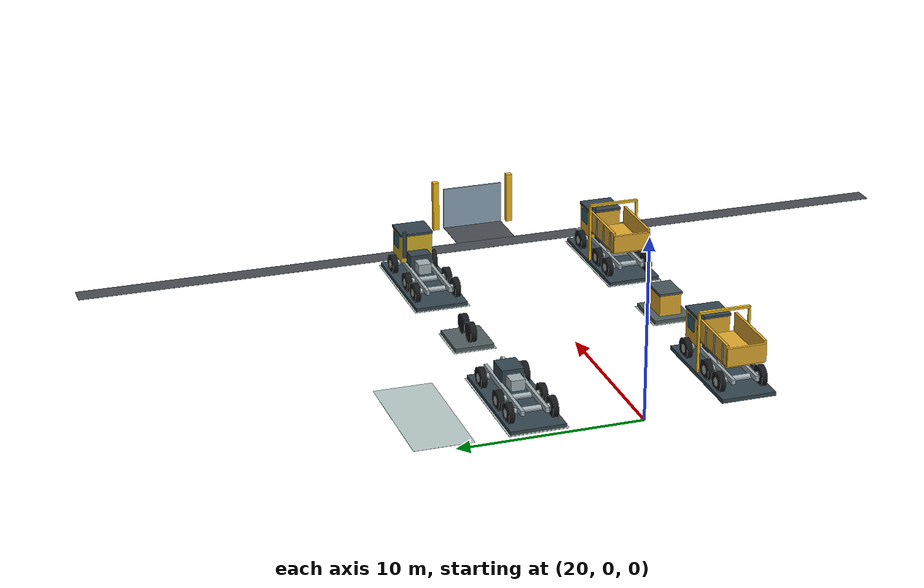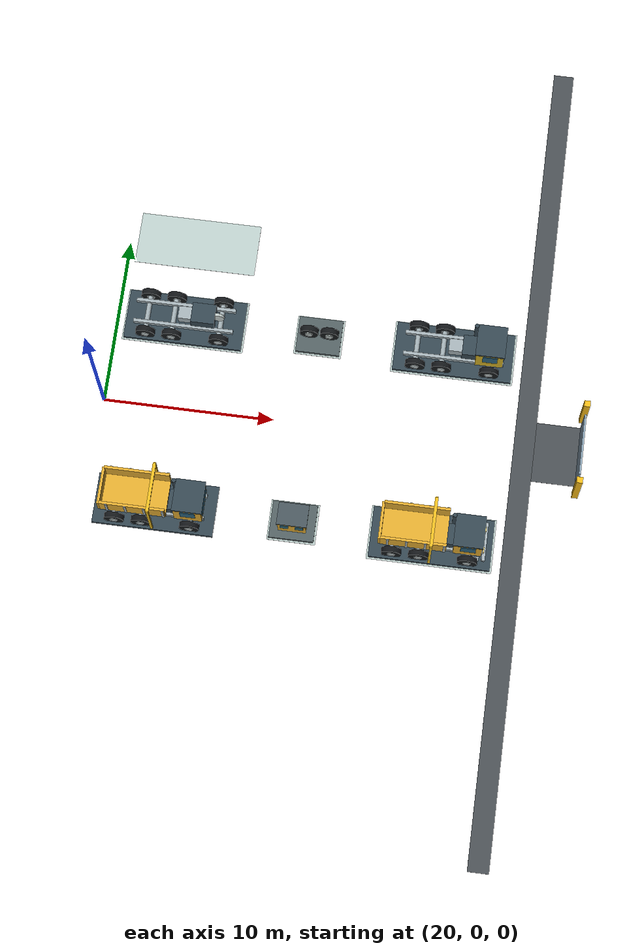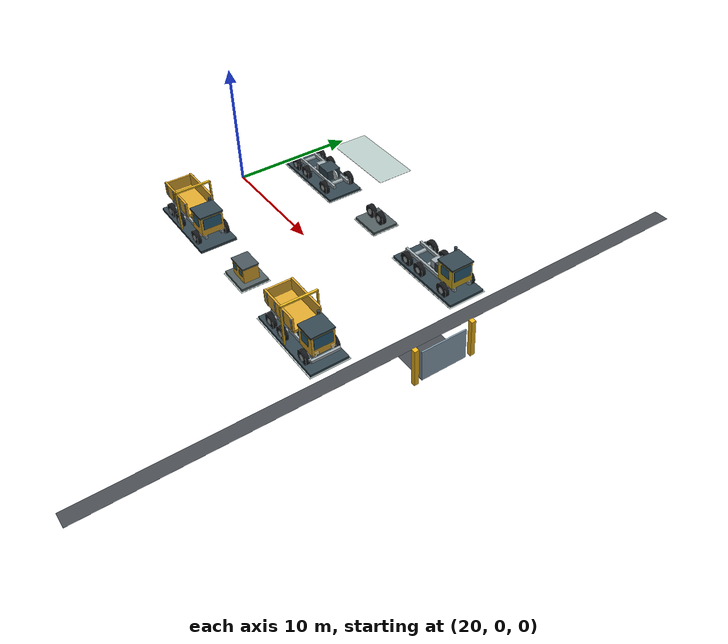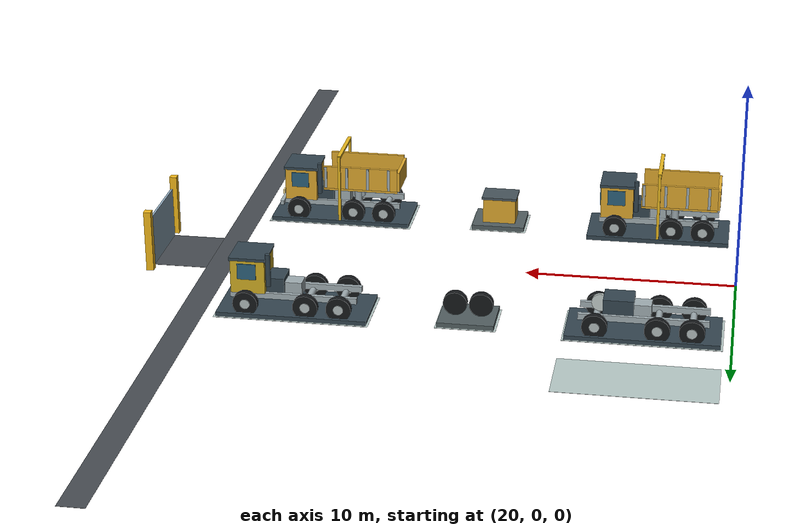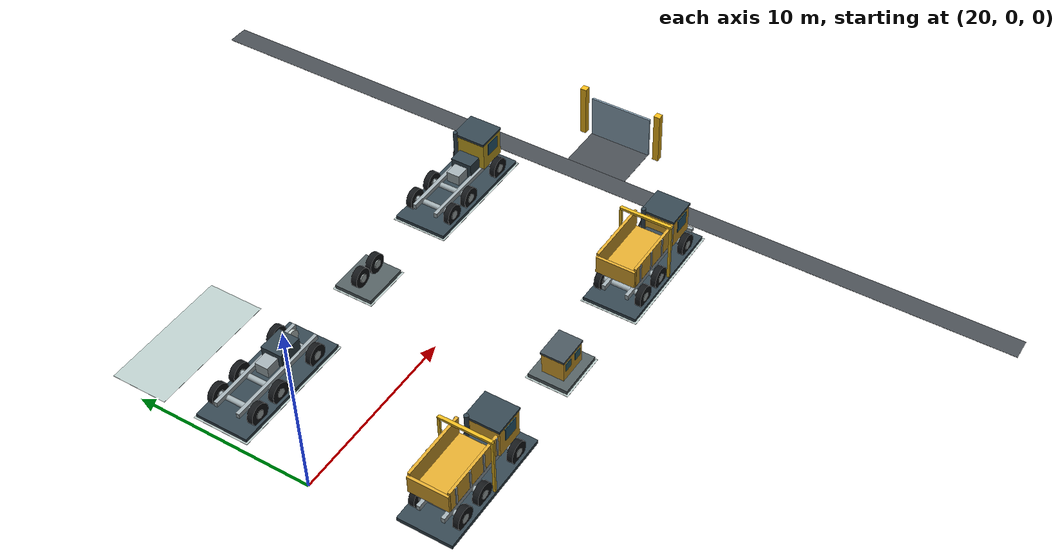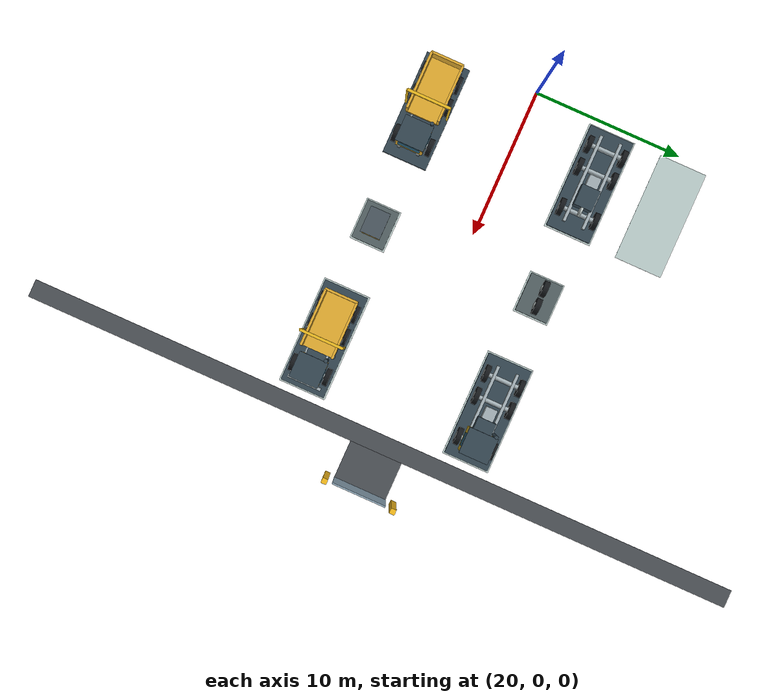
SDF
<sdf version="1.7">
 <world name="warehouse_layout_demo">
  <include><uri>model://sun</uri></include>
  <model name="east_perimeter_path">
   <static>true</static>
   <pose>44.7 0.0 0.025 0 0 0</pose>
   <link name="marking">
    <visual name="visual">
     <geometry><box><size>1.2 49.0 0.012</size></box></geometry>
     <material><ambient>0.28 0.30 0.32 1</ambient><diffuse>0.28 0.30 0.32 1</diffuse></material>
    </visual>
   </link>
  </model>
  <model name="east_gate_approach">
   <static>true</static>
   <pose>46.6 0.0 0.025 0 0 0</pose>
   <link name="marking">
    <visual name="visual">
     <geometry><box><size>2.6 3.6 0.012</size></box></geometry>
     <material><ambient>0.28 0.30 0.32 1</ambient><diffuse>0.28 0.30 0.32 1</diffuse></material>
    </visual>
   </link>
  </model>
  <model name="east_gate_south_post">
   <static>true</static>
   <pose>47.9 -2.3 1.5 0 0 0</pose>
   <link name="link">
    <collision name="collision">
     <geometry><box><size>0.35 0.35 3.0</size></box></geometry>
     <surface><friction><ode><mu>0.9</mu><mu2>0.9</mu2></ode></friction></surface>
    </collision>
    <visual name="visual">
     <geometry><box><size>0.35 0.35 3.0</size></box></geometry>
     <material><ambient>0.95 0.72 0.10 1</ambient><diffuse>0.95 0.72 0.10 1</diffuse></material>
    </visual>
   </link>
  </model>
  <model name="east_gate_north_post">
   <static>true</static>
   <pose>47.9 2.3 1.5 0 0 0</pose>
   <link name="link">
    <collision name="collision">
     <geometry><box><size>0.35 0.35 3.0</size></box></geometry>
     <surface><friction><ode><mu>0.9</mu><mu2>0.9</mu2></ode></friction></surface>
    </collision>
    <visual name="visual">
     <geometry><box><size>0.35 0.35 3.0</size></box></geometry>
     <material><ambient>0.95 0.72 0.10 1</ambient><diffuse>0.95 0.72 0.10 1</diffuse></material>
    </visual>
   </link>
  </model>
  <model name="warehouse_east_gate">
   <static>false</static>
   <pose>47.9 0.0 1.25 0 0 0</pose>
   <link name="panel">
    <kinematic>true</kinematic>
    <gravity>false</gravity>
    <inertial>
     <mass>100.0</mass>
     <inertia><ixx>100.0</ixx><iyy>100.0</iyy><izz>100.0</izz><ixy>0</ixy><ixz>0</ixz><iyz>0</iyz></inertia>
    </inertial>
    <collision name="collision"><geometry><box><size>0.105 3.6 2.5</size></box></geometry></collision>
    <visual name="visual">
     <geometry><box><size>0.105 3.6 2.5</size></box></geometry>
     <material><ambient>0.55 0.65 0.72 1</ambient><diffuse>0.55 0.65 0.72 1</diffuse></material>
    </visual>
   </link>
  </model>
  <model name="vehicle_stage_5_line_4_se">
   <static>true</static>
   <pose>24.0 -6.0 0 0 0 0</pose>
   <link name="fixture">
    <collision name="collision">
     <pose>0 0 1.9 0 0 0</pose>
     <geometry><box><size>7.0 3.0 3.8</size></box></geometry>
    </collision>
    <visual name="service_platform">
     <pose>0 0 0.11 0 0 0</pose>
     <geometry><box><size>7.0 3.0 0.22</size></box></geometry>
     <material><ambient>0.20 0.27 0.31 1</ambient><diffuse>0.20 0.27 0.31 1</diffuse></material>
    </visual>
    <visual name="chassis_rail_0">
     <pose>0 -0.66 0.85 0 0 0</pose>
     <geometry><box><size>5.9 0.19 0.28</size></box></geometry>
     <material><ambient>0.63 0.68 0.70 1</ambient><diffuse>0.63 0.68 0.70 1</diffuse></material>
    </visual>
    <visual name="haul_tire_0_0">
     <pose>-2.2 -1.18 0.63 1.57079632679 0 0</pose>
     <geometry><cylinder><radius>0.58</radius><length>0.32</length></cylinder></geometry>
     <material><ambient>0.08 0.09 0.10 1</ambient><diffuse>0.08 0.09 0.10 1</diffuse></material>
    </visual>
    <visual name="tire_hub_0_0">
     <pose>-2.2 -1.18 0.63 1.57079632679 0 0</pose>
     <geometry><cylinder><radius>0.23</radius><length>0.34</length></cylinder></geometry>
     <material><ambient>0.70 0.74 0.74 1</ambient><diffuse>0.70 0.74 0.74 1</diffuse></material>
    </visual>
    <visual name="haul_tire_0_1">
     <pose>-0.65 -1.18 0.63 1.57079632679 0 0</pose>
     <geometry><cylinder><radius>0.58</radius><length>0.32</length></cylinder></geometry>
     <material><ambient>0.08 0.09 0.10 1</ambient><diffuse>0.08 0.09 0.10 1</diffuse></material>
    </visual>
    <visual name="tire_hub_0_1">
     <pose>-0.65 -1.18 0.63 1.57079632679 0 0</pose>
     <geometry><cylinder><radius>0.23</radius><length>0.34</length></cylinder></geometry>
     <material><ambient>0.70 0.74 0.74 1</ambient><diffuse>0.70 0.74 0.74 1</diffuse></material>
    </visual>
    <visual name="haul_tire_0_2">
     <pose>2.15 -1.18 0.63 1.57079632679 0 0</pose>
     <geometry><cylinder><radius>0.58</radius><length>0.32</length></cylinder></geometry>
     <material><ambient>0.08 0.09 0.10 1</ambient><diffuse>0.08 0.09 0.10 1</diffuse></material>
    </visual>
    <visual name="tire_hub_0_2">
     <pose>2.15 -1.18 0.63 1.57079632679 0 0</pose>
     <geometry><cylinder><radius>0.23</radius><length>0.34</length></cylinder></geometry>
     <material><ambient>0.70 0.74 0.74 1</ambient><diffuse>0.70 0.74 0.74 1</diffuse></material>
    </visual>
    <visual name="chassis_rail_1">
     <pose>0 0.66 0.85 0 0 0</pose>
     <geometry><box><size>5.9 0.19 0.28</size></box></geometry>
     <material><ambient>0.63 0.68 0.70 1</ambient><diffuse>0.63 0.68 0.70 1</diffuse></material>
    </visual>
    <visual name="haul_tire_1_0">
     <pose>-2.2 1.18 0.63 1.57079632679 0 0</pose>
     <geometry><cylinder><radius>0.58</radius><length>0.32</length></cylinder></geometry>
     <material><ambient>0.08 0.09 0.10 1</ambient><diffuse>0.08 0.09 0.10 1</diffuse></material>
    </visual>
    <visual name="tire_hub_1_0">
     <pose>-2.2 1.18 0.63 1.57079632679 0 0</pose>
     <geometry><cylinder><radius>0.23</radius><length>0.34</length></cylinder></geometry>
     <material><ambient>0.70 0.74 0.74 1</ambient><diffuse>0.70 0.74 0.74 1</diffuse></material>
    </visual>
    <visual name="haul_tire_1_1">
     <pose>-0.65 1.18 0.63 1.57079632679 0 0</pose>
     <geometry><cylinder><radius>0.58</radius><length>0.32</length></cylinder></geometry>
     <material><ambient>0.08 0.09 0.10 1</ambient><diffuse>0.08 0.09 0.10 1</diffuse></material>
    </visual>
    <visual name="tire_hub_1_1">
     <pose>-0.65 1.18 0.63 1.57079632679 0 0</pose>
     <geometry><cylinder><radius>0.23</radius><length>0.34</length></cylinder></geometry>
     <material><ambient>0.70 0.74 0.74 1</ambient><diffuse>0.70 0.74 0.74 1</diffuse></material>
    </visual>
    <visual name="haul_tire_1_2">
     <pose>2.15 1.18 0.63 1.57079632679 0 0</pose>
     <geometry><cylinder><radius>0.58</radius><length>0.32</length></cylinder></geometry>
     <material><ambient>0.08 0.09 0.10 1</ambient><diffuse>0.08 0.09 0.10 1</diffuse></material>
    </visual>
    <visual name="tire_hub_1_2">
     <pose>2.15 1.18 0.63 1.57079632679 0 0</pose>
     <geometry><cylinder><radius>0.23</radius><length>0.34</length></cylinder></geometry>
     <material><ambient>0.70 0.74 0.74 1</ambient><diffuse>0.70 0.74 0.74 1</diffuse></material>
    </visual>
    <visual name="drive_axle_0">
     <pose>-2.2 0 0.68 1.57079632679 0 0</pose>
     <geometry><cylinder><radius>0.15</radius><length>2.38</length></cylinder></geometry>
     <material><ambient>0.63 0.68 0.70 1</ambient><diffuse>0.63 0.68 0.70 1</diffuse></material>
    </visual>
    <visual name="drive_axle_1">
     <pose>-0.65 0 0.68 1.57079632679 0 0</pose>
     <geometry><cylinder><radius>0.15</radius><length>2.38</length></cylinder></geometry>
     <material><ambient>0.63 0.68 0.70 1</ambient><diffuse>0.63 0.68 0.70 1</diffuse></material>
    </visual>
    <visual name="drive_axle_2">
     <pose>2.15 0 0.68 1.57079632679 0 0</pose>
     <geometry><cylinder><radius>0.15</radius><length>2.38</length></cylinder></geometry>
     <material><ambient>0.63 0.68 0.70 1</ambient><diffuse>0.63 0.68 0.70 1</diffuse></material>
    </visual>
    <visual name="diesel_engine">
     <pose>1.15 0 1.26 0 0 0</pose>
     <geometry><box><size>1.38 1.22 0.83</size></box></geometry>
     <material><ambient>0.20 0.27 0.31 1</ambient><diffuse>0.20 0.27 0.31 1</diffuse></material>
    </visual>
    <visual name="gearbox">
     <pose>0.08 0 1.12 0 0 0</pose>
     <geometry><box><size>0.82 0.76 0.6</size></box></geometry>
     <material><ambient>0.63 0.68 0.70 1</ambient><diffuse>0.63 0.68 0.70 1</diffuse></material>
    </visual>
    <visual name="radiator_fan">
     <pose>1.98 0 1.29 1.57079632679 0 0</pose>
     <geometry><cylinder><radius>0.41</radius><length>0.15</length></cylinder></geometry>
     <material><ambient>0.76 0.80 0.79 1</ambient><diffuse>0.76 0.80 0.79 1</diffuse></material>
    </visual>
    <visual name="operator_cab">
     <pose>2.08 0 1.82 0 0 0</pose>
     <geometry><box><size>1.6 1.83 1.62</size></box></geometry>
     <material><ambient>0.87 0.66 0.18 1</ambient><diffuse>0.87 0.66 0.18 1</diffuse></material>
    </visual>
    <visual name="cab_roof">
     <pose>2.08 0 2.66 0 0 0</pose>
     <geometry><box><size>1.72 1.91 0.14</size></box></geometry>
     <material><ambient>0.20 0.27 0.31 1</ambient><diffuse>0.20 0.27 0.31 1</diffuse></material>
    </visual>
    <visual name="windshield">
     <pose>2.91 0 2.03 0 0 0</pose>
     <geometry><box><size>0.045 1.48 0.91</size></box></geometry>
     <material><ambient>0.17 0.38 0.48 1</ambient><diffuse>0.17 0.38 0.48 1</diffuse></material>
    </visual>
    <visual name="exhaust_stack">
     <pose>1.14 0.76 2.15 0.0 0 0</pose>
     <geometry><cylinder><radius>0.12</radius><length>1.57</length></cylinder></geometry>
     <material><ambient>0.20 0.27 0.31 1</ambient><diffuse>0.20 0.27 0.31 1</diffuse></material>
    </visual>
    <visual name="cab_side_glass_0">
     <pose>2.11 -0.95 2.08 0 0 0</pose>
     <geometry><box><size>0.87 0.035 0.76</size></box></geometry>
     <material><ambient>0.17 0.38 0.48 1</ambient><diffuse>0.17 0.38 0.48 1</diffuse></material>
    </visual>
    <visual name="cab_side_glass_1">
     <pose>2.11 0.95 2.08 0 0 0</pose>
     <geometry><box><size>0.87 0.035 0.76</size></box></geometry>
     <material><ambient>0.17 0.38 0.48 1</ambient><diffuse>0.17 0.38 0.48 1</diffuse></material>
    </visual>
    <visual name="dump_bed_floor">
     <pose>-1.01 0 1.78 0 0 0</pose>
     <geometry><box><size>3.75 2.15 0.22</size></box></geometry>
     <material><ambient>0.87 0.66 0.18 1</ambient><diffuse>0.87 0.66 0.18 1</diffuse></material>
    </visual>
    <visual name="dump_bed_side_0">
     <pose>-1.01 -1.05 2.37 0 0 0</pose>
     <geometry><box><size>3.75 0.15 1.15</size></box></geometry>
     <material><ambient>0.87 0.66 0.18 1</ambient><diffuse>0.87 0.66 0.18 1</diffuse></material>
    </visual>
    <visual name="bed_rib_0_0">
     <pose>-2.46 -1.1235000000000002 2.37 0 0 0</pose>
     <geometry><box><size>0.13 0.08 1.1</size></box></geometry>
     <material><ambient>0.63 0.68 0.70 1</ambient><diffuse>0.63 0.68 0.70 1</diffuse></material>
    </visual>
    <visual name="bed_rib_0_1">
     <pose>-1.39 -1.1235000000000002 2.37 0 0 0</pose>
     <geometry><box><size>0.13 0.08 1.1</size></box></geometry>
     <material><ambient>0.63 0.68 0.70 1</ambient><diffuse>0.63 0.68 0.70 1</diffuse></material>
    </visual>
    <visual name="bed_rib_0_2">
     <pose>-0.32 -1.1235000000000002 2.37 0 0 0</pose>
     <geometry><box><size>0.13 0.08 1.1</size></box></geometry>
     <material><ambient>0.63 0.68 0.70 1</ambient><diffuse>0.63 0.68 0.70 1</diffuse></material>
    </visual>
    <visual name="bed_rib_0_3">
     <pose>0.75 -1.1235000000000002 2.37 0 0 0</pose>
     <geometry><box><size>0.13 0.08 1.1</size></box></geometry>
     <material><ambient>0.63 0.68 0.70 1</ambient><diffuse>0.63 0.68 0.70 1</diffuse></material>
    </visual>
    <visual name="dump_bed_side_1">
     <pose>-1.01 1.05 2.37 0 0 0</pose>
     <geometry><box><size>3.75 0.15 1.15</size></box></geometry>
     <material><ambient>0.87 0.66 0.18 1</ambient><diffuse>0.87 0.66 0.18 1</diffuse></material>
    </visual>
    <visual name="bed_rib_1_0">
     <pose>-2.46 1.1235000000000002 2.37 0 0 0</pose>
     <geometry><box><size>0.13 0.08 1.1</size></box></geometry>
     <material><ambient>0.63 0.68 0.70 1</ambient><diffuse>0.63 0.68 0.70 1</diffuse></material>
    </visual>
    <visual name="bed_rib_1_1">
     <pose>-1.39 1.1235000000000002 2.37 0 0 0</pose>
     <geometry><box><size>0.13 0.08 1.1</size></box></geometry>
     <material><ambient>0.63 0.68 0.70 1</ambient><diffuse>0.63 0.68 0.70 1</diffuse></material>
    </visual>
    <visual name="bed_rib_1_2">
     <pose>-0.32 1.1235000000000002 2.37 0 0 0</pose>
     <geometry><box><size>0.13 0.08 1.1</size></box></geometry>
     <material><ambient>0.63 0.68 0.70 1</ambient><diffuse>0.63 0.68 0.70 1</diffuse></material>
    </visual>
    <visual name="bed_rib_1_3">
     <pose>0.75 1.1235000000000002 2.37 0 0 0</pose>
     <geometry><box><size>0.13 0.08 1.1</size></box></geometry>
     <material><ambient>0.63 0.68 0.70 1</ambient><diffuse>0.63 0.68 0.70 1</diffuse></material>
    </visual>
    <visual name="rear_gate">
     <pose>-2.93 0 2.29 0 0 0</pose>
     <geometry><box><size>0.15 2.2 1.0</size></box></geometry>
     <material><ambient>0.87 0.66 0.18 1</ambient><diffuse>0.87 0.66 0.18 1</diffuse></material>
    </visual>
    <visual name="hydraulic_lift_left">
     <pose>-0.78 -0.48 1.37 0.0 0 0</pose>
     <geometry><cylinder><radius>0.18</radius><length>1.0</length></cylinder></geometry>
     <material><ambient>0.63 0.68 0.70 1</ambient><diffuse>0.63 0.68 0.70 1</diffuse></material>
    </visual>
    <visual name="hydraulic_lift_right">
     <pose>-0.78 0.48 1.37 0.0 0 0</pose>
     <geometry><cylinder><radius>0.18</radius><length>1.0</length></cylinder></geometry>
     <material><ambient>0.63 0.68 0.70 1</ambient><diffuse>0.63 0.68 0.70 1</diffuse></material>
    </visual>
    <visual name="test_gantry_post_0">
     <pose>0 -1.42 1.86 0 0 0</pose>
     <geometry><box><size>0.13 0.13 3.52</size></box></geometry>
     <material><ambient>0.91 0.72 0.12 1</ambient><diffuse>0.91 0.72 0.12 1</diffuse></material>
    </visual>
    <visual name="test_gantry_post_1">
     <pose>0 1.42 1.86 0 0 0</pose>
     <geometry><box><size>0.13 0.13 3.52</size></box></geometry>
     <material><ambient>0.91 0.72 0.12 1</ambient><diffuse>0.91 0.72 0.12 1</diffuse></material>
    </visual>
    <visual name="test_gantry_beam">
     <pose>0 0 3.59 0 0 0</pose>
     <geometry><box><size>0.18 2.86 0.13</size></box></geometry>
     <material><ambient>0.91 0.72 0.12 1</ambient><diffuse>0.91 0.72 0.12 1</diffuse></material>
    </visual>
   </link>
  </model>
  <model name="vehicle_stage_6_line_4_se_pad">
   <static>true</static>
   <pose>40.0 -6.0 0.012 0 0 0</pose>
   <link name="marking">
    <visual name="visual">
     <geometry><box><size>7.2 3.2 0.012</size></box></geometry>
     <material><ambient>0.72 0.79 0.78 1</ambient><diffuse>0.72 0.79 0.78 1</diffuse></material>
    </visual>
   </link>
  </model>
  <model name="vehicle_stage_6_line_4_se">
   <static>true</static>
   <pose>40.0 -6.0 0 0 0 0</pose>
   <link name="fixture">
    <collision name="collision">
     <pose>0 0 1.9 0 0 0</pose>
     <geometry><box><size>7.0 3.0 3.8</size></box></geometry>
    </collision>
    <visual name="service_platform">
     <pose>0 0 0.11 0 0 0</pose>
     <geometry><box><size>7.0 3.0 0.22</size></box></geometry>
     <material><ambient>0.20 0.27 0.31 1</ambient><diffuse>0.20 0.27 0.31 1</diffuse></material>
    </visual>
    <visual name="chassis_rail_0">
     <pose>0 -0.66 0.85 0 0 0</pose>
     <geometry><box><size>5.9 0.19 0.28</size></box></geometry>
     <material><ambient>0.63 0.68 0.70 1</ambient><diffuse>0.63 0.68 0.70 1</diffuse></material>
    </visual>
    <visual name="haul_tire_0_0">
     <pose>-2.2 -1.18 0.63 1.57079632679 0 0</pose>
     <geometry><cylinder><radius>0.58</radius><length>0.32</length></cylinder></geometry>
     <material><ambient>0.08 0.09 0.10 1</ambient><diffuse>0.08 0.09 0.10 1</diffuse></material>
    </visual>
    <visual name="tire_hub_0_0">
     <pose>-2.2 -1.18 0.63 1.57079632679 0 0</pose>
     <geometry><cylinder><radius>0.23</radius><length>0.34</length></cylinder></geometry>
     <material><ambient>0.70 0.74 0.74 1</ambient><diffuse>0.70 0.74 0.74 1</diffuse></material>
    </visual>
    <visual name="haul_tire_0_1">
     <pose>-0.65 -1.18 0.63 1.57079632679 0 0</pose>
     <geometry><cylinder><radius>0.58</radius><length>0.32</length></cylinder></geometry>
     <material><ambient>0.08 0.09 0.10 1</ambient><diffuse>0.08 0.09 0.10 1</diffuse></material>
    </visual>
    <visual name="tire_hub_0_1">
     <pose>-0.65 -1.18 0.63 1.57079632679 0 0</pose>
     <geometry><cylinder><radius>0.23</radius><length>0.34</length></cylinder></geometry>
     <material><ambient>0.70 0.74 0.74 1</ambient><diffuse>0.70 0.74 0.74 1</diffuse></material>
    </visual>
    <visual name="haul_tire_0_2">
     <pose>2.15 -1.18 0.63 1.57079632679 0 0</pose>
     <geometry><cylinder><radius>0.58</radius><length>0.32</length></cylinder></geometry>
     <material><ambient>0.08 0.09 0.10 1</ambient><diffuse>0.08 0.09 0.10 1</diffuse></material>
    </visual>
    <visual name="tire_hub_0_2">
     <pose>2.15 -1.18 0.63 1.57079632679 0 0</pose>
     <geometry><cylinder><radius>0.23</radius><length>0.34</length></cylinder></geometry>
     <material><ambient>0.70 0.74 0.74 1</ambient><diffuse>0.70 0.74 0.74 1</diffuse></material>
    </visual>
    <visual name="chassis_rail_1">
     <pose>0 0.66 0.85 0 0 0</pose>
     <geometry><box><size>5.9 0.19 0.28</size></box></geometry>
     <material><ambient>0.63 0.68 0.70 1</ambient><diffuse>0.63 0.68 0.70 1</diffuse></material>
    </visual>
    <visual name="haul_tire_1_0">
     <pose>-2.2 1.18 0.63 1.57079632679 0 0</pose>
     <geometry><cylinder><radius>0.58</radius><length>0.32</length></cylinder></geometry>
     <material><ambient>0.08 0.09 0.10 1</ambient><diffuse>0.08 0.09 0.10 1</diffuse></material>
    </visual>
    <visual name="tire_hub_1_0">
     <pose>-2.2 1.18 0.63 1.57079632679 0 0</pose>
     <geometry><cylinder><radius>0.23</radius><length>0.34</length></cylinder></geometry>
     <material><ambient>0.70 0.74 0.74 1</ambient><diffuse>0.70 0.74 0.74 1</diffuse></material>
    </visual>
    <visual name="haul_tire_1_1">
     <pose>-0.65 1.18 0.63 1.57079632679 0 0</pose>
     <geometry><cylinder><radius>0.58</radius><length>0.32</length></cylinder></geometry>
     <material><ambient>0.08 0.09 0.10 1</ambient><diffuse>0.08 0.09 0.10 1</diffuse></material>
    </visual>
    <visual name="tire_hub_1_1">
     <pose>-0.65 1.18 0.63 1.57079632679 0 0</pose>
     <geometry><cylinder><radius>0.23</radius><length>0.34</length></cylinder></geometry>
     <material><ambient>0.70 0.74 0.74 1</ambient><diffuse>0.70 0.74 0.74 1</diffuse></material>
    </visual>
    <visual name="haul_tire_1_2">
     <pose>2.15 1.18 0.63 1.57079632679 0 0</pose>
     <geometry><cylinder><radius>0.58</radius><length>0.32</length></cylinder></geometry>
     <material><ambient>0.08 0.09 0.10 1</ambient><diffuse>0.08 0.09 0.10 1</diffuse></material>
    </visual>
    <visual name="tire_hub_1_2">
     <pose>2.15 1.18 0.63 1.57079632679 0 0</pose>
     <geometry><cylinder><radius>0.23</radius><length>0.34</length></cylinder></geometry>
     <material><ambient>0.70 0.74 0.74 1</ambient><diffuse>0.70 0.74 0.74 1</diffuse></material>
    </visual>
    <visual name="drive_axle_0">
     <pose>-2.2 0 0.68 1.57079632679 0 0</pose>
     <geometry><cylinder><radius>0.15</radius><length>2.38</length></cylinder></geometry>
     <material><ambient>0.63 0.68 0.70 1</ambient><diffuse>0.63 0.68 0.70 1</diffuse></material>
    </visual>
    <visual name="drive_axle_1">
     <pose>-0.65 0 0.68 1.57079632679 0 0</pose>
     <geometry><cylinder><radius>0.15</radius><length>2.38</length></cylinder></geometry>
     <material><ambient>0.63 0.68 0.70 1</ambient><diffuse>0.63 0.68 0.70 1</diffuse></material>
    </visual>
    <visual name="drive_axle_2">
     <pose>2.15 0 0.68 1.57079632679 0 0</pose>
     <geometry><cylinder><radius>0.15</radius><length>2.38</length></cylinder></geometry>
     <material><ambient>0.63 0.68 0.70 1</ambient><diffuse>0.63 0.68 0.70 1</diffuse></material>
    </visual>
    <visual name="diesel_engine">
     <pose>1.15 0 1.26 0 0 0</pose>
     <geometry><box><size>1.38 1.22 0.83</size></box></geometry>
     <material><ambient>0.20 0.27 0.31 1</ambient><diffuse>0.20 0.27 0.31 1</diffuse></material>
    </visual>
    <visual name="gearbox">
     <pose>0.08 0 1.12 0 0 0</pose>
     <geometry><box><size>0.82 0.76 0.6</size></box></geometry>
     <material><ambient>0.63 0.68 0.70 1</ambient><diffuse>0.63 0.68 0.70 1</diffuse></material>
    </visual>
    <visual name="radiator_fan">
     <pose>1.98 0 1.29 1.57079632679 0 0</pose>
     <geometry><cylinder><radius>0.41</radius><length>0.15</length></cylinder></geometry>
     <material><ambient>0.76 0.80 0.79 1</ambient><diffuse>0.76 0.80 0.79 1</diffuse></material>
    </visual>
    <visual name="operator_cab">
     <pose>2.08 0 1.82 0 0 0</pose>
     <geometry><box><size>1.6 1.83 1.62</size></box></geometry>
     <material><ambient>0.87 0.66 0.18 1</ambient><diffuse>0.87 0.66 0.18 1</diffuse></material>
    </visual>
    <visual name="cab_roof">
     <pose>2.08 0 2.66 0 0 0</pose>
     <geometry><box><size>1.72 1.91 0.14</size></box></geometry>
     <material><ambient>0.20 0.27 0.31 1</ambient><diffuse>0.20 0.27 0.31 1</diffuse></material>
    </visual>
    <visual name="windshield">
     <pose>2.91 0 2.03 0 0 0</pose>
     <geometry><box><size>0.045 1.48 0.91</size></box></geometry>
     <material><ambient>0.17 0.38 0.48 1</ambient><diffuse>0.17 0.38 0.48 1</diffuse></material>
    </visual>
    <visual name="exhaust_stack">
     <pose>1.14 0.76 2.15 0.0 0 0</pose>
     <geometry><cylinder><radius>0.12</radius><length>1.57</length></cylinder></geometry>
     <material><ambient>0.20 0.27 0.31 1</ambient><diffuse>0.20 0.27 0.31 1</diffuse></material>
    </visual>
    <visual name="cab_side_glass_0">
     <pose>2.11 -0.95 2.08 0 0 0</pose>
     <geometry><box><size>0.87 0.035 0.76</size></box></geometry>
     <material><ambient>0.17 0.38 0.48 1</ambient><diffuse>0.17 0.38 0.48 1</diffuse></material>
    </visual>
    <visual name="cab_side_glass_1">
     <pose>2.11 0.95 2.08 0 0 0</pose>
     <geometry><box><size>0.87 0.035 0.76</size></box></geometry>
     <material><ambient>0.17 0.38 0.48 1</ambient><diffuse>0.17 0.38 0.48 1</diffuse></material>
    </visual>
    <visual name="dump_bed_floor">
     <pose>-1.01 0 1.78 0 0 0</pose>
     <geometry><box><size>3.75 2.15 0.22</size></box></geometry>
     <material><ambient>0.87 0.66 0.18 1</ambient><diffuse>0.87 0.66 0.18 1</diffuse></material>
    </visual>
    <visual name="dump_bed_side_0">
     <pose>-1.01 -1.05 2.37 0 0 0</pose>
     <geometry><box><size>3.75 0.15 1.15</size></box></geometry>
     <material><ambient>0.87 0.66 0.18 1</ambient><diffuse>0.87 0.66 0.18 1</diffuse></material>
    </visual>
    <visual name="bed_rib_0_0">
     <pose>-2.46 -1.1235000000000002 2.37 0 0 0</pose>
     <geometry><box><size>0.13 0.08 1.1</size></box></geometry>
     <material><ambient>0.63 0.68 0.70 1</ambient><diffuse>0.63 0.68 0.70 1</diffuse></material>
    </visual>
    <visual name="bed_rib_0_1">
     <pose>-1.39 -1.1235000000000002 2.37 0 0 0</pose>
     <geometry><box><size>0.13 0.08 1.1</size></box></geometry>
     <material><ambient>0.63 0.68 0.70 1</ambient><diffuse>0.63 0.68 0.70 1</diffuse></material>
    </visual>
    <visual name="bed_rib_0_2">
     <pose>-0.32 -1.1235000000000002 2.37 0 0 0</pose>
     <geometry><box><size>0.13 0.08 1.1</size></box></geometry>
     <material><ambient>0.63 0.68 0.70 1</ambient><diffuse>0.63 0.68 0.70 1</diffuse></material>
    </visual>
    <visual name="bed_rib_0_3">
     <pose>0.75 -1.1235000000000002 2.37 0 0 0</pose>
     <geometry><box><size>0.13 0.08 1.1</size></box></geometry>
     <material><ambient>0.63 0.68 0.70 1</ambient><diffuse>0.63 0.68 0.70 1</diffuse></material>
    </visual>
    <visual name="dump_bed_side_1">
     <pose>-1.01 1.05 2.37 0 0 0</pose>
     <geometry><box><size>3.75 0.15 1.15</size></box></geometry>
     <material><ambient>0.87 0.66 0.18 1</ambient><diffuse>0.87 0.66 0.18 1</diffuse></material>
    </visual>
    <visual name="bed_rib_1_0">
     <pose>-2.46 1.1235000000000002 2.37 0 0 0</pose>
     <geometry><box><size>0.13 0.08 1.1</size></box></geometry>
     <material><ambient>0.63 0.68 0.70 1</ambient><diffuse>0.63 0.68 0.70 1</diffuse></material>
    </visual>
    <visual name="bed_rib_1_1">
     <pose>-1.39 1.1235000000000002 2.37 0 0 0</pose>
     <geometry><box><size>0.13 0.08 1.1</size></box></geometry>
     <material><ambient>0.63 0.68 0.70 1</ambient><diffuse>0.63 0.68 0.70 1</diffuse></material>
    </visual>
    <visual name="bed_rib_1_2">
     <pose>-0.32 1.1235000000000002 2.37 0 0 0</pose>
     <geometry><box><size>0.13 0.08 1.1</size></box></geometry>
     <material><ambient>0.63 0.68 0.70 1</ambient><diffuse>0.63 0.68 0.70 1</diffuse></material>
    </visual>
    <visual name="bed_rib_1_3">
     <pose>0.75 1.1235000000000002 2.37 0 0 0</pose>
     <geometry><box><size>0.13 0.08 1.1</size></box></geometry>
     <material><ambient>0.63 0.68 0.70 1</ambient><diffuse>0.63 0.68 0.70 1</diffuse></material>
    </visual>
    <visual name="rear_gate">
     <pose>-2.93 0 2.29 0 0 0</pose>
     <geometry><box><size>0.15 2.2 1.0</size></box></geometry>
     <material><ambient>0.87 0.66 0.18 1</ambient><diffuse>0.87 0.66 0.18 1</diffuse></material>
    </visual>
    <visual name="hydraulic_lift_left">
     <pose>-0.78 -0.48 1.37 0.0 0 0</pose>
     <geometry><cylinder><radius>0.18</radius><length>1.0</length></cylinder></geometry>
     <material><ambient>0.63 0.68 0.70 1</ambient><diffuse>0.63 0.68 0.70 1</diffuse></material>
    </visual>
    <visual name="hydraulic_lift_right">
     <pose>-0.78 0.48 1.37 0.0 0 0</pose>
     <geometry><cylinder><radius>0.18</radius><length>1.0</length></cylinder></geometry>
     <material><ambient>0.63 0.68 0.70 1</ambient><diffuse>0.63 0.68 0.70 1</diffuse></material>
    </visual>
    <visual name="test_gantry_post_0">
     <pose>0 -1.42 1.86 0 0 0</pose>
     <geometry><box><size>0.13 0.13 3.52</size></box></geometry>
     <material><ambient>0.91 0.72 0.12 1</ambient><diffuse>0.91 0.72 0.12 1</diffuse></material>
    </visual>
    <visual name="test_gantry_post_1">
     <pose>0 1.42 1.86 0 0 0</pose>
     <geometry><box><size>0.13 0.13 3.52</size></box></geometry>
     <material><ambient>0.91 0.72 0.12 1</ambient><diffuse>0.91 0.72 0.12 1</diffuse></material>
    </visual>
    <visual name="test_gantry_beam">
     <pose>0 0 3.59 0 0 0</pose>
     <geometry><box><size>0.18 2.86 0.13</size></box></geometry>
     <material><ambient>0.91 0.72 0.12 1</ambient><diffuse>0.91 0.72 0.12 1</diffuse></material>
    </visual>
    <visual name="headlamp_0">
     <pose>3.01 -0.62 1.3 0 0 0</pose>
     <geometry><box><size>0.07 0.3 0.21</size></box></geometry>
     <material><ambient>0.98 0.89 0.59 1</ambient><diffuse>0.98 0.89 0.59 1</diffuse></material>
    </visual>
    <visual name="headlamp_1">
     <pose>3.01 0.62 1.3 0 0 0</pose>
     <geometry><box><size>0.07 0.3 0.21</size></box></geometry>
     <material><ambient>0.98 0.89 0.59 1</ambient><diffuse>0.98 0.89 0.59 1</diffuse></material>
    </visual>
    <visual name="front_bumper">
     <pose>3.04 0 0.85 0 0 0</pose>
     <geometry><box><size>0.19 2.27 0.21</size></box></geometry>
     <material><ambient>0.63 0.68 0.70 1</ambient><diffuse>0.63 0.68 0.70 1</diffuse></material>
    </visual>
    <visual name="safety_step">
     <pose>2.45 -1.02 0.72 0 0 0</pose>
     <geometry><box><size>0.67 0.23 0.13</size></box></geometry>
     <material><ambient>0.63 0.68 0.70 1</ambient><diffuse>0.63 0.68 0.70 1</diffuse></material>
    </visual>
   </link>
  </model>
  <model name="assembly_kit_2_line_4_se_pad">
   <static>true</static>
   <pose>32.0 -6.0 0.012 0 0 0</pose>
   <link name="marking">
    <visual name="visual">
     <geometry><box><size>2.8000000000000003 2.4000000000000004 0.012</size></box></geometry>
     <material><ambient>0.72 0.79 0.78 1</ambient><diffuse>0.72 0.79 0.78 1</diffuse></material>
    </visual>
   </link>
  </model>
  <model name="assembly_kit_2_line_4_se">
   <static>true</static>
   <pose>32.0 -6.0 0 0 0 0</pose>
   <link name="fixture">
    <collision name="collision">
     <pose>0 0 0.95 0 0 0</pose>
     <geometry><box><size>2.6 2.2 1.9</size></box></geometry>
    </collision>
    <visual name="kit_frame">
     <pose>0 0 0.12 0 0 0</pose>
     <geometry><box><size>2.6 2.2 0.24</size></box></geometry>
     <material><ambient>0.32 0.37 0.38 1</ambient><diffuse>0.32 0.37 0.38 1</diffuse></material>
    </visual>
    <visual name="cab_module">
     <pose>0 0 0.8 0 0 0</pose>
     <geometry><box><size>1.62 1.25 1.35</size></box></geometry>
     <material><ambient>0.87 0.66 0.18 1</ambient><diffuse>0.87 0.66 0.18 1</diffuse></material>
    </visual>
    <visual name="cab_window_0">
     <pose>-0.43 -0.64 1.02 0 0 0</pose>
     <geometry><box><size>0.47 0.03 0.45</size></box></geometry>
     <material><ambient>0.19 0.41 0.47 1</ambient><diffuse>0.19 0.41 0.47 1</diffuse></material>
    </visual>
    <visual name="cab_window_1">
     <pose>0.43 -0.64 1.02 0 0 0</pose>
     <geometry><box><size>0.47 0.03 0.45</size></box></geometry>
     <material><ambient>0.19 0.41 0.47 1</ambient><diffuse>0.19 0.41 0.47 1</diffuse></material>
    </visual>
    <visual name="cab_roof">
     <pose>0 0 1.52 0 0 0</pose>
     <geometry><box><size>1.75 1.34 0.12</size></box></geometry>
     <material><ambient>0.28 0.33 0.36 1</ambient><diffuse>0.28 0.33 0.36 1</diffuse></material>
    </visual>
   </link>
  </model>
  <model name="vehicle_stage_2_line_1_ne_pad">
   <static>true</static>
   <pose>24.0 5.5 0.012 0 0 0</pose>
   <link name="marking">
    <visual name="visual">
     <geometry><box><size>7.2 3.2 0.012</size></box></geometry>
     <material><ambient>0.72 0.79 0.78 1</ambient><diffuse>0.72 0.79 0.78 1</diffuse></material>
    </visual>
   </link>
  </model>
  <model name="vehicle_stage_2_line_1_ne">
   <static>true</static>
   <pose>24.0 5.5 0 0 0 0</pose>
   <link name="fixture">
    <collision name="collision">
     <pose>0 0 1.9 0 0 0</pose>
     <geometry><box><size>7.0 3.0 3.8</size></box></geometry>
    </collision>
    <visual name="service_platform">
     <pose>0 0 0.11 0 0 0</pose>
     <geometry><box><size>7.0 3.0 0.22</size></box></geometry>
     <material><ambient>0.20 0.27 0.31 1</ambient><diffuse>0.20 0.27 0.31 1</diffuse></material>
    </visual>
    <visual name="chassis_rail_0">
     <pose>0 -0.66 0.85 0 0 0</pose>
     <geometry><box><size>5.9 0.19 0.28</size></box></geometry>
     <material><ambient>0.63 0.68 0.70 1</ambient><diffuse>0.63 0.68 0.70 1</diffuse></material>
    </visual>
    <visual name="haul_tire_0_0">
     <pose>-2.2 -1.18 0.63 1.57079632679 0 0</pose>
     <geometry><cylinder><radius>0.58</radius><length>0.32</length></cylinder></geometry>
     <material><ambient>0.08 0.09 0.10 1</ambient><diffuse>0.08 0.09 0.10 1</diffuse></material>
    </visual>
    <visual name="tire_hub_0_0">
     <pose>-2.2 -1.18 0.63 1.57079632679 0 0</pose>
     <geometry><cylinder><radius>0.23</radius><length>0.34</length></cylinder></geometry>
     <material><ambient>0.70 0.74 0.74 1</ambient><diffuse>0.70 0.74 0.74 1</diffuse></material>
    </visual>
    <visual name="haul_tire_0_1">
     <pose>-0.65 -1.18 0.63 1.57079632679 0 0</pose>
     <geometry><cylinder><radius>0.58</radius><length>0.32</length></cylinder></geometry>
     <material><ambient>0.08 0.09 0.10 1</ambient><diffuse>0.08 0.09 0.10 1</diffuse></material>
    </visual>
    <visual name="tire_hub_0_1">
     <pose>-0.65 -1.18 0.63 1.57079632679 0 0</pose>
     <geometry><cylinder><radius>0.23</radius><length>0.34</length></cylinder></geometry>
     <material><ambient>0.70 0.74 0.74 1</ambient><diffuse>0.70 0.74 0.74 1</diffuse></material>
    </visual>
    <visual name="haul_tire_0_2">
     <pose>2.15 -1.18 0.63 1.57079632679 0 0</pose>
     <geometry><cylinder><radius>0.58</radius><length>0.32</length></cylinder></geometry>
     <material><ambient>0.08 0.09 0.10 1</ambient><diffuse>0.08 0.09 0.10 1</diffuse></material>
    </visual>
    <visual name="tire_hub_0_2">
     <pose>2.15 -1.18 0.63 1.57079632679 0 0</pose>
     <geometry><cylinder><radius>0.23</radius><length>0.34</length></cylinder></geometry>
     <material><ambient>0.70 0.74 0.74 1</ambient><diffuse>0.70 0.74 0.74 1</diffuse></material>
    </visual>
    <visual name="chassis_rail_1">
     <pose>0 0.66 0.85 0 0 0</pose>
     <geometry><box><size>5.9 0.19 0.28</size></box></geometry>
     <material><ambient>0.63 0.68 0.70 1</ambient><diffuse>0.63 0.68 0.70 1</diffuse></material>
    </visual>
    <visual name="haul_tire_1_0">
     <pose>-2.2 1.18 0.63 1.57079632679 0 0</pose>
     <geometry><cylinder><radius>0.58</radius><length>0.32</length></cylinder></geometry>
     <material><ambient>0.08 0.09 0.10 1</ambient><diffuse>0.08 0.09 0.10 1</diffuse></material>
    </visual>
    <visual name="tire_hub_1_0">
     <pose>-2.2 1.18 0.63 1.57079632679 0 0</pose>
     <geometry><cylinder><radius>0.23</radius><length>0.34</length></cylinder></geometry>
     <material><ambient>0.70 0.74 0.74 1</ambient><diffuse>0.70 0.74 0.74 1</diffuse></material>
    </visual>
    <visual name="haul_tire_1_1">
     <pose>-0.65 1.18 0.63 1.57079632679 0 0</pose>
     <geometry><cylinder><radius>0.58</radius><length>0.32</length></cylinder></geometry>
     <material><ambient>0.08 0.09 0.10 1</ambient><diffuse>0.08 0.09 0.10 1</diffuse></material>
    </visual>
    <visual name="tire_hub_1_1">
     <pose>-0.65 1.18 0.63 1.57079632679 0 0</pose>
     <geometry><cylinder><radius>0.23</radius><length>0.34</length></cylinder></geometry>
     <material><ambient>0.70 0.74 0.74 1</ambient><diffuse>0.70 0.74 0.74 1</diffuse></material>
    </visual>
    <visual name="haul_tire_1_2">
     <pose>2.15 1.18 0.63 1.57079632679 0 0</pose>
     <geometry><cylinder><radius>0.58</radius><length>0.32</length></cylinder></geometry>
     <material><ambient>0.08 0.09 0.10 1</ambient><diffuse>0.08 0.09 0.10 1</diffuse></material>
    </visual>
    <visual name="tire_hub_1_2">
     <pose>2.15 1.18 0.63 1.57079632679 0 0</pose>
     <geometry><cylinder><radius>0.23</radius><length>0.34</length></cylinder></geometry>
     <material><ambient>0.70 0.74 0.74 1</ambient><diffuse>0.70 0.74 0.74 1</diffuse></material>
    </visual>
    <visual name="drive_axle_0">
     <pose>-2.2 0 0.68 1.57079632679 0 0</pose>
     <geometry><cylinder><radius>0.15</radius><length>2.38</length></cylinder></geometry>
     <material><ambient>0.63 0.68 0.70 1</ambient><diffuse>0.63 0.68 0.70 1</diffuse></material>
    </visual>
    <visual name="drive_axle_1">
     <pose>-0.65 0 0.68 1.57079632679 0 0</pose>
     <geometry><cylinder><radius>0.15</radius><length>2.38</length></cylinder></geometry>
     <material><ambient>0.63 0.68 0.70 1</ambient><diffuse>0.63 0.68 0.70 1</diffuse></material>
    </visual>
    <visual name="drive_axle_2">
     <pose>2.15 0 0.68 1.57079632679 0 0</pose>
     <geometry><cylinder><radius>0.15</radius><length>2.38</length></cylinder></geometry>
     <material><ambient>0.63 0.68 0.70 1</ambient><diffuse>0.63 0.68 0.70 1</diffuse></material>
    </visual>
    <visual name="diesel_engine">
     <pose>1.15 0 1.26 0 0 0</pose>
     <geometry><box><size>1.38 1.22 0.83</size></box></geometry>
     <material><ambient>0.20 0.27 0.31 1</ambient><diffuse>0.20 0.27 0.31 1</diffuse></material>
    </visual>
    <visual name="gearbox">
     <pose>0.08 0 1.12 0 0 0</pose>
     <geometry><box><size>0.82 0.76 0.6</size></box></geometry>
     <material><ambient>0.63 0.68 0.70 1</ambient><diffuse>0.63 0.68 0.70 1</diffuse></material>
    </visual>
    <visual name="radiator_fan">
     <pose>1.98 0 1.29 1.57079632679 0 0</pose>
     <geometry><cylinder><radius>0.41</radius><length>0.15</length></cylinder></geometry>
     <material><ambient>0.76 0.80 0.79 1</ambient><diffuse>0.76 0.80 0.79 1</diffuse></material>
    </visual>
   </link>
  </model>
  <model name="vehicle_stage_3_line_1_ne_pad">
   <static>true</static>
   <pose>40.0 5.5 0.012 0 0 0</pose>
   <link name="marking">
    <visual name="visual">
     <geometry><box><size>7.2 3.2 0.012</size></box></geometry>
     <material><ambient>0.72 0.79 0.78 1</ambient><diffuse>0.72 0.79 0.78 1</diffuse></material>
    </visual>
   </link>
  </model>
  <model name="vehicle_stage_3_line_1_ne">
   <static>true</static>
   <pose>40.0 5.5 0 0 0 0</pose>
   <link name="fixture">
    <collision name="collision">
     <pose>0 0 1.9 0 0 0</pose>
     <geometry><box><size>7.0 3.0 3.8</size></box></geometry>
    </collision>
    <visual name="service_platform">
     <pose>0 0 0.11 0 0 0</pose>
     <geometry><box><size>7.0 3.0 0.22</size></box></geometry>
     <material><ambient>0.20 0.27 0.31 1</ambient><diffuse>0.20 0.27 0.31 1</diffuse></material>
    </visual>
    <visual name="chassis_rail_0">
     <pose>0 -0.66 0.85 0 0 0</pose>
     <geometry><box><size>5.9 0.19 0.28</size></box></geometry>
     <material><ambient>0.63 0.68 0.70 1</ambient><diffuse>0.63 0.68 0.70 1</diffuse></material>
    </visual>
    <visual name="haul_tire_0_0">
     <pose>-2.2 -1.18 0.63 1.57079632679 0 0</pose>
     <geometry><cylinder><radius>0.58</radius><length>0.32</length></cylinder></geometry>
     <material><ambient>0.08 0.09 0.10 1</ambient><diffuse>0.08 0.09 0.10 1</diffuse></material>
    </visual>
    <visual name="tire_hub_0_0">
     <pose>-2.2 -1.18 0.63 1.57079632679 0 0</pose>
     <geometry><cylinder><radius>0.23</radius><length>0.34</length></cylinder></geometry>
     <material><ambient>0.70 0.74 0.74 1</ambient><diffuse>0.70 0.74 0.74 1</diffuse></material>
    </visual>
    <visual name="haul_tire_0_1">
     <pose>-0.65 -1.18 0.63 1.57079632679 0 0</pose>
     <geometry><cylinder><radius>0.58</radius><length>0.32</length></cylinder></geometry>
     <material><ambient>0.08 0.09 0.10 1</ambient><diffuse>0.08 0.09 0.10 1</diffuse></material>
    </visual>
    <visual name="tire_hub_0_1">
     <pose>-0.65 -1.18 0.63 1.57079632679 0 0</pose>
     <geometry><cylinder><radius>0.23</radius><length>0.34</length></cylinder></geometry>
     <material><ambient>0.70 0.74 0.74 1</ambient><diffuse>0.70 0.74 0.74 1</diffuse></material>
    </visual>
    <visual name="haul_tire_0_2">
     <pose>2.15 -1.18 0.63 1.57079632679 0 0</pose>
     <geometry><cylinder><radius>0.58</radius><length>0.32</length></cylinder></geometry>
     <material><ambient>0.08 0.09 0.10 1</ambient><diffuse>0.08 0.09 0.10 1</diffuse></material>
    </visual>
    <visual name="tire_hub_0_2">
     <pose>2.15 -1.18 0.63 1.57079632679 0 0</pose>
     <geometry><cylinder><radius>0.23</radius><length>0.34</length></cylinder></geometry>
     <material><ambient>0.70 0.74 0.74 1</ambient><diffuse>0.70 0.74 0.74 1</diffuse></material>
    </visual>
    <visual name="chassis_rail_1">
     <pose>0 0.66 0.85 0 0 0</pose>
     <geometry><box><size>5.9 0.19 0.28</size></box></geometry>
     <material><ambient>0.63 0.68 0.70 1</ambient><diffuse>0.63 0.68 0.70 1</diffuse></material>
    </visual>
    <visual name="haul_tire_1_0">
     <pose>-2.2 1.18 0.63 1.57079632679 0 0</pose>
     <geometry><cylinder><radius>0.58</radius><length>0.32</length></cylinder></geometry>
     <material><ambient>0.08 0.09 0.10 1</ambient><diffuse>0.08 0.09 0.10 1</diffuse></material>
    </visual>
    <visual name="tire_hub_1_0">
     <pose>-2.2 1.18 0.63 1.57079632679 0 0</pose>
     <geometry><cylinder><radius>0.23</radius><length>0.34</length></cylinder></geometry>
     <material><ambient>0.70 0.74 0.74 1</ambient><diffuse>0.70 0.74 0.74 1</diffuse></material>
    </visual>
    <visual name="haul_tire_1_1">
     <pose>-0.65 1.18 0.63 1.57079632679 0 0</pose>
     <geometry><cylinder><radius>0.58</radius><length>0.32</length></cylinder></geometry>
     <material><ambient>0.08 0.09 0.10 1</ambient><diffuse>0.08 0.09 0.10 1</diffuse></material>
    </visual>
    <visual name="tire_hub_1_1">
     <pose>-0.65 1.18 0.63 1.57079632679 0 0</pose>
     <geometry><cylinder><radius>0.23</radius><length>0.34</length></cylinder></geometry>
     <material><ambient>0.70 0.74 0.74 1</ambient><diffuse>0.70 0.74 0.74 1</diffuse></material>
    </visual>
    <visual name="haul_tire_1_2">
     <pose>2.15 1.18 0.63 1.57079632679 0 0</pose>
     <geometry><cylinder><radius>0.58</radius><length>0.32</length></cylinder></geometry>
     <material><ambient>0.08 0.09 0.10 1</ambient><diffuse>0.08 0.09 0.10 1</diffuse></material>
    </visual>
    <visual name="tire_hub_1_2">
     <pose>2.15 1.18 0.63 1.57079632679 0 0</pose>
     <geometry><cylinder><radius>0.23</radius><length>0.34</length></cylinder></geometry>
     <material><ambient>0.70 0.74 0.74 1</ambient><diffuse>0.70 0.74 0.74 1</diffuse></material>
    </visual>
    <visual name="drive_axle_0">
     <pose>-2.2 0 0.68 1.57079632679 0 0</pose>
     <geometry><cylinder><radius>0.15</radius><length>2.38</length></cylinder></geometry>
     <material><ambient>0.63 0.68 0.70 1</ambient><diffuse>0.63 0.68 0.70 1</diffuse></material>
    </visual>
    <visual name="drive_axle_1">
     <pose>-0.65 0 0.68 1.57079632679 0 0</pose>
     <geometry><cylinder><radius>0.15</radius><length>2.38</length></cylinder></geometry>
     <material><ambient>0.63 0.68 0.70 1</ambient><diffuse>0.63 0.68 0.70 1</diffuse></material>
    </visual>
    <visual name="drive_axle_2">
     <pose>2.15 0 0.68 1.57079632679 0 0</pose>
     <geometry><cylinder><radius>0.15</radius><length>2.38</length></cylinder></geometry>
     <material><ambient>0.63 0.68 0.70 1</ambient><diffuse>0.63 0.68 0.70 1</diffuse></material>
    </visual>
    <visual name="diesel_engine">
     <pose>1.15 0 1.26 0 0 0</pose>
     <geometry><box><size>1.38 1.22 0.83</size></box></geometry>
     <material><ambient>0.20 0.27 0.31 1</ambient><diffuse>0.20 0.27 0.31 1</diffuse></material>
    </visual>
    <visual name="gearbox">
     <pose>0.08 0 1.12 0 0 0</pose>
     <geometry><box><size>0.82 0.76 0.6</size></box></geometry>
     <material><ambient>0.63 0.68 0.70 1</ambient><diffuse>0.63 0.68 0.70 1</diffuse></material>
    </visual>
    <visual name="radiator_fan">
     <pose>1.98 0 1.29 1.57079632679 0 0</pose>
     <geometry><cylinder><radius>0.41</radius><length>0.15</length></cylinder></geometry>
     <material><ambient>0.76 0.80 0.79 1</ambient><diffuse>0.76 0.80 0.79 1</diffuse></material>
    </visual>
    <visual name="operator_cab">
     <pose>2.08 0 1.82 0 0 0</pose>
     <geometry><box><size>1.6 1.83 1.62</size></box></geometry>
     <material><ambient>0.82 0.68 0.14 1</ambient><diffuse>0.82 0.68 0.14 1</diffuse></material>
    </visual>
    <visual name="cab_roof">
     <pose>2.08 0 2.66 0 0 0</pose>
     <geometry><box><size>1.72 1.91 0.14</size></box></geometry>
     <material><ambient>0.20 0.27 0.31 1</ambient><diffuse>0.20 0.27 0.31 1</diffuse></material>
    </visual>
    <visual name="windshield">
     <pose>2.91 0 2.03 0 0 0</pose>
     <geometry><box><size>0.045 1.48 0.91</size></box></geometry>
     <material><ambient>0.17 0.38 0.48 1</ambient><diffuse>0.17 0.38 0.48 1</diffuse></material>
    </visual>
    <visual name="exhaust_stack">
     <pose>1.14 0.76 2.15 0.0 0 0</pose>
     <geometry><cylinder><radius>0.12</radius><length>1.57</length></cylinder></geometry>
     <material><ambient>0.20 0.27 0.31 1</ambient><diffuse>0.20 0.27 0.31 1</diffuse></material>
    </visual>
    <visual name="cab_side_glass_0">
     <pose>2.11 -0.95 2.08 0 0 0</pose>
     <geometry><box><size>0.87 0.035 0.76</size></box></geometry>
     <material><ambient>0.17 0.38 0.48 1</ambient><diffuse>0.17 0.38 0.48 1</diffuse></material>
    </visual>
    <visual name="cab_side_glass_1">
     <pose>2.11 0.95 2.08 0 0 0</pose>
     <geometry><box><size>0.87 0.035 0.76</size></box></geometry>
     <material><ambient>0.17 0.38 0.48 1</ambient><diffuse>0.17 0.38 0.48 1</diffuse></material>
    </visual>
   </link>
  </model>
  <model name="assembly_kit_2_line_1_ne_pad">
   <static>true</static>
   <pose>32.0 5.5 0.012 0 0 0</pose>
   <link name="marking">
    <visual name="visual">
     <geometry><box><size>2.8000000000000003 2.4000000000000004 0.012</size></box></geometry>
     <material><ambient>0.72 0.79 0.78 1</ambient><diffuse>0.72 0.79 0.78 1</diffuse></material>
    </visual>
   </link>
  </model>
  <model name="assembly_kit_2_line_1_ne">
   <static>true</static>
   <pose>32.0 5.5 0 0 0 0</pose>
   <link name="fixture">
    <collision name="collision">
     <pose>0 0 0.95 0 0 0</pose>
     <geometry><box><size>2.6 2.2 1.9</size></box></geometry>
    </collision>
    <visual name="kit_frame">
     <pose>0 0 0.12 0 0 0</pose>
     <geometry><box><size>2.6 2.2 0.24</size></box></geometry>
     <material><ambient>0.32 0.37 0.38 1</ambient><diffuse>0.32 0.37 0.38 1</diffuse></material>
    </visual>
    <visual name="spare_tire_0">
     <pose>-0.6 0 0.8 1.57079632679 0 0</pose>
     <geometry><cylinder><radius>0.55</radius><length>0.35</length></cylinder></geometry>
     <material><ambient>0.08 0.09 0.10 1</ambient><diffuse>0.08 0.09 0.10 1</diffuse></material>
    </visual>
    <visual name="tire_hub_0">
     <pose>-0.6 -0.2 0.8 1.57079632679 0 0</pose>
     <geometry><cylinder><radius>0.22</radius><length>0.05</length></cylinder></geometry>
     <material><ambient>0.69 0.73 0.72 1</ambient><diffuse>0.69 0.73 0.72 1</diffuse></material>
    </visual>
    <visual name="spare_tire_1">
     <pose>0.6 0 0.8 1.57079632679 0 0</pose>
     <geometry><cylinder><radius>0.55</radius><length>0.35</length></cylinder></geometry>
     <material><ambient>0.08 0.09 0.10 1</ambient><diffuse>0.08 0.09 0.10 1</diffuse></material>
    </visual>
    <visual name="tire_hub_1">
     <pose>0.6 -0.2 0.8 1.57079632679 0 0</pose>
     <geometry><cylinder><radius>0.22</radius><length>0.05</length></cylinder></geometry>
     <material><ambient>0.69 0.73 0.72 1</ambient><diffuse>0.69 0.73 0.72 1</diffuse></material>
    </visual>
   </link>
  </model>
  <model name="vehicle_stage_2_line_2_ne_pad">
   <static>true</static>
   <pose>24.0 10.5 0.012 0 0 0</pose>
   <link name="marking">
    <visual name="visual">
     <geometry><box><size>7.2 3.2 0.012</size></box></geometry>
     <material><ambient>0.72 0.79 0.78 1</ambient><diffuse>0.72 0.79 0.78 1</diffuse></material>
    </visual>
   </link>
  </model>
 </world>
</sdf>
